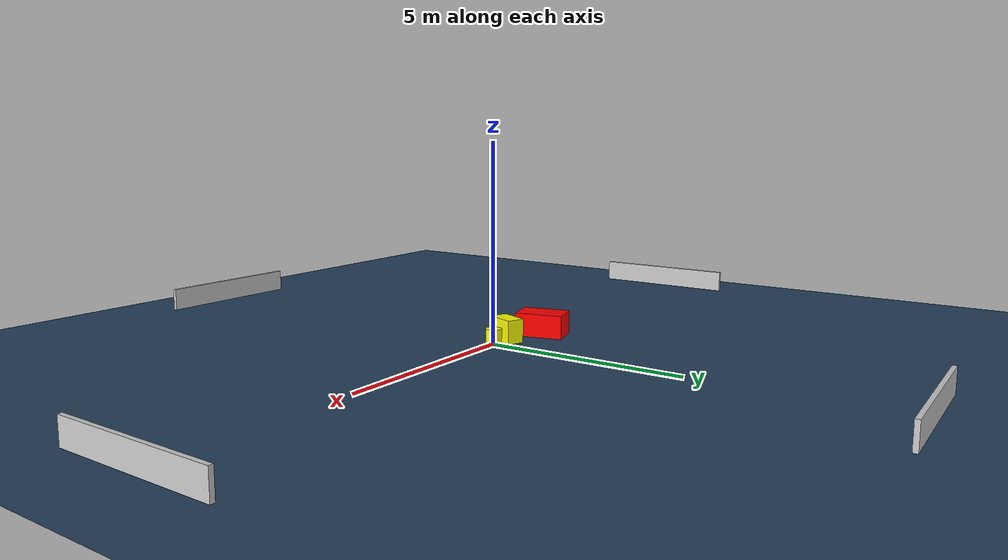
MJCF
<?xml version="1.0" ?>
<mujoco model="generated_environment">
  <option timestep="0.01" integrator="RK4" cone="elliptic"/>
  <default>
    <geom density="1"/>
  </default>
  <asset>
    <texture builtin="gradient" height="3072" name="skybox" rgb1="0.3 0.5 0.7" rgb2="0 0 0" type="skybox" width="512"/>
    <texture builtin="checker" height="300" name="groundplane" rgb1="0.2 0.3 0.4" rgb2="0.1 0.2 0.3" type="2d" width="300"/>
    <material name="groundplane" reflectance="0.2" texrepeat="5 5" texture="groundplane"/>
  </asset>
  <worldbody>
    <light dir="0 0 -1" directional="true" pos="0 0 1.5"/>
    <geom condim="3" friction="0.5 0.005 0.001" material="groundplane" name="floor" pos="0 0 0" size="0 0 0.05" type="plane"/>
    <body name="walls">
      <geom name="wall_1" condim="4" pos="-10.0 0.0 0.3" rgba="0.800000011920929 0.800000011920929 0.800000011920929 1.0" size="0.05 2.0 0.3" type="box"/>
      <geom name="wall_2" condim="4" pos="10.0 0.0 0.3" rgba="0.800000011920929 0.800000011920929 0.800000011920929 1.0" size="0.05 2.0 0.3" type="box"/>
      <geom name="wall_3" condim="4" pos="0.0 -10.0 0.3" rgba="0.800000011920929 0.800000011920929 0.800000011920929 1.0" size="2.0 0.05 0.3" type="box"/>
      <geom name="wall_4" condim="4" pos="0.0 10.0 0.3" rgba="0.800000011920929 0.800000011920929 0.800000011920929 1.0" size="2.0 0.05 0.3" type="box"/>
    </body>
    <body name="robot">
      <joint name="joint_x" type="slide" pos="0 0 0" axis="1 0 0"/>
      <joint name="joint_y" type="slide" pos="0 0 0" axis="0 1 0"/>
      <geom name="robot" type="cylinder" pos="0.0 0.0 0.2" size="0.2 0.2 0.0" mass="5.0" friction="1.0 0.005 0.0001" condim="4" rgba="1.0 1.0 0.0 1.0"/>
    </body>
    <body name="obstacle_1_movable">
      <geom name="obstacle_1_movable" condim="4" pos="-0.4998464480333294 0.07109691337702694 0.3" euler="0 0 247.90344074730143" friction="0.0 0.005 0.001" rgba="1.0 1.0 0.0 1.0" size="0.36994647039311257 0.22434388890316637 0.3" type="box" mass="0.1"/>
      <joint type="free"/>
    </body>
    <body name="obstacle_2_static">
      <geom name="obstacle_2_static" condim="4" pos="-1.5807039927580513 0.4419730683341484 0.3" euler="0 0 194.96392727808743" friction="0.0 0.005 0.001" rgba="1.0 0.0 0.0 1.0" size="0.38911070571442585 0.6098113928465683 0.3" type="box"/>
    </body>
  </worldbody>
  <actuator>
    <motor name="actuator_x" joint="joint_x" gear="1" ctrlrange="-1 1"/>
    <motor name="actuator_y" joint="joint_y" gear="1" ctrlrange="-1 1"/>
  </actuator>
</mujoco>
